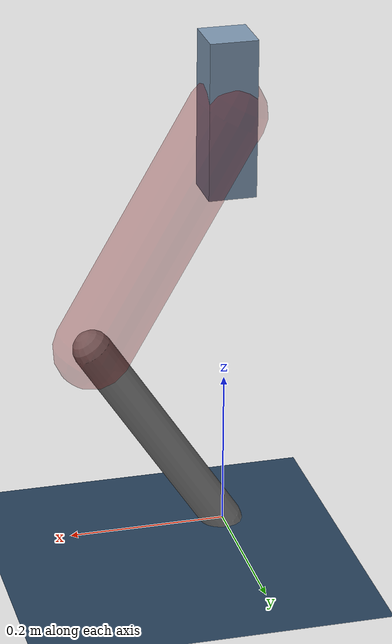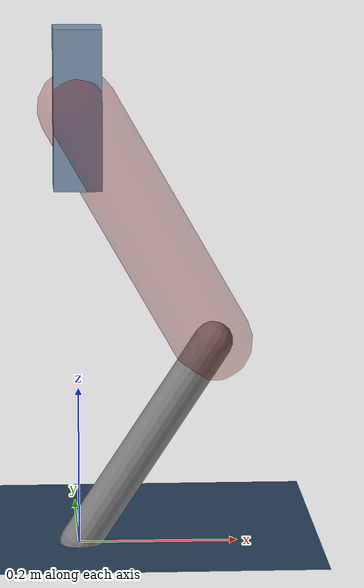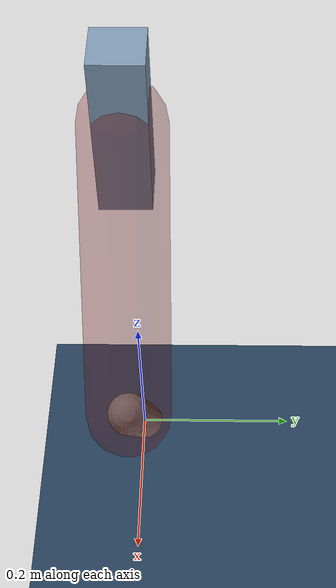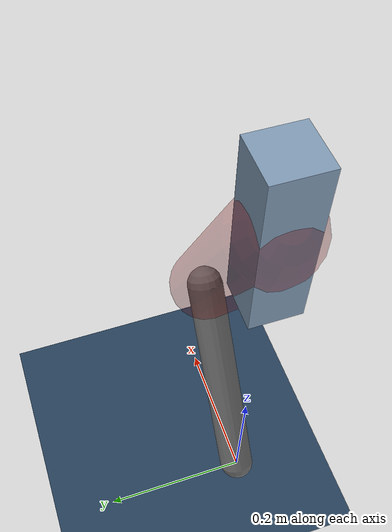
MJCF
<mujoco model="Hopper2D">
	<compiler inertiafromgeom="true" angle="radian" />
	<option timestep="0.001" integrator="implicit" cone="elliptic" solver="Newton" tolerance="1e-10" />

	<default>
		<geom contype="1" conaffinity="1" condim="3" friction="2 0.005 0.0001" solref="0.005 1" />
		<joint limited="true" damping="0.1" />
	</default>

	<asset>
		<texture name="skybox" type="skybox" builtin="gradient" rgb1=".4 .6 .8" rgb2="0 0 0" width="800" height="800" />
		<texture name="grid" type="2d" builtin="checker" rgb1=".1 .2 .3" rgb2=".2 .3 .4" width="300" height="300" mark="edge" markrgb=".2 .3 .4" />
		<material name="ground" texture="grid" texrepeat="1 1" texuniform="true" reflectance="0.1" />
		<material name="leg" rgba="0.5 0.6 0.7 1" />
	</asset>

	<worldbody>

		<geom name="floor" type="plane" size="5 5 0.25" material="ground" />

		<light directional="false" diffuse="0.8 0.8 0.8" specular="0.3 0.3 0.3" pos="0 0 2" dir="0 0 -1" />
		<light mode="targetbodycom" target="base" directional="false" diffuse="0.8 0.8 0.8" specular="0.3 0.3 0.3" pos="0 0 2" dir="0 0 -1" />

		<camera name="fixed" pos="0 -2 1" xyaxes="1 0 0 0 0 1" />
		<camera name="tracking" mode="trackcom" pos="0 -3 1" />

		<body name="root" pos="0 0 0.5542305349440317">
			<joint name="slide_x" type="slide" axis="1 0 0" range="-100 100" />
			<joint name="slide_z" type="slide" axis="0 0 1" range="0 10" />

			<body name="base" pos="0 0 0">
				<geom name="torso" type="box" size="0.03 0.03 0.1" mass="2.607" material="leg" />

				<body name="link1" pos="0 0 0" euler="0 1.050905355292106 0">
					<joint type="hinge" axis="0 -1 0" pos="0 0 0" name="hinge1" limited="true" range="-3.14 3.14" stiffness="0" damping="0.1" />
					<geom name="thigh" type="capsule" fromto="0 0 0 0.34049671223992095 0 0" size="0.05" rgba="0.5 0 0 0.3" mass="1.1000411230477865" />

					<body name="link2" pos="0.34049671223992095 0 0" euler="0 1.0989357691666854 0">
						<joint type="hinge" axis="0 -1 0" pos="0 0 0" name="hinge2" limited="true" range="-3.14 3.14" stiffness="0" damping="0.1" />
						<geom name="shank" type="capsule" fromto="0 0 0 0.3091122107860532 0 0" size="0.025" mass="0.4908009897074479" />

					</body>
				</body>
			</body>
		</body>
	</worldbody>

	<actuator>
		<motor name="torque1" joint="hinge1" ctrlrange="-52.40190167352136 52.40190167352136" ctrllimited="true" gear="1" />
		<motor name="torque2" joint="hinge2" ctrlrange="-108.97478264411933 108.97478264411933" ctrllimited="true" gear="1" />
	</actuator>
</mujoco>
